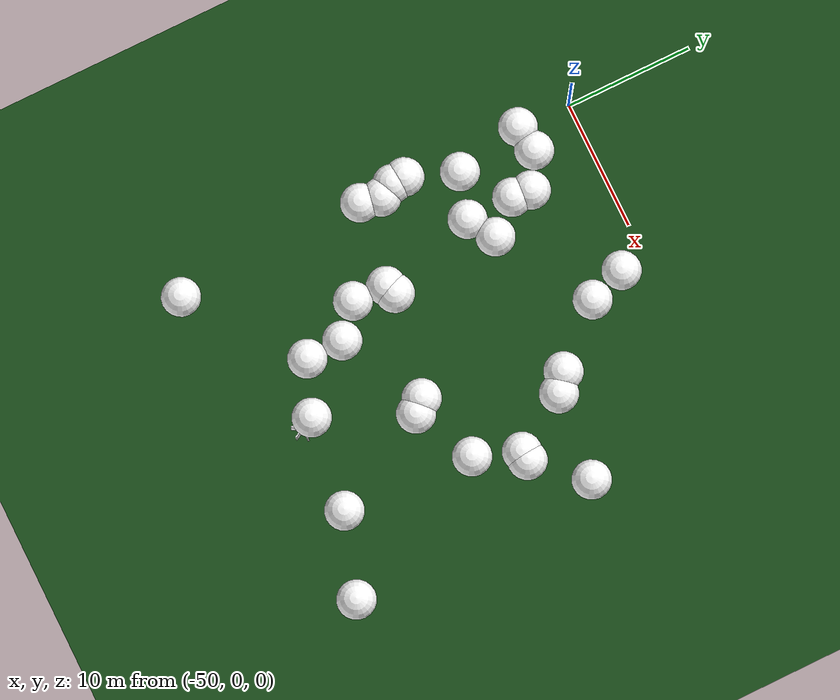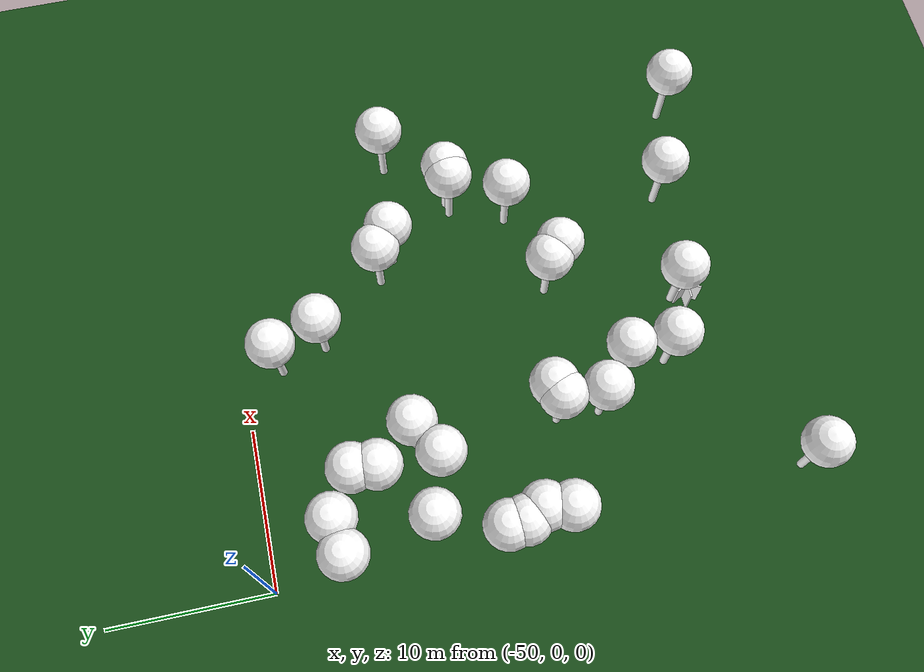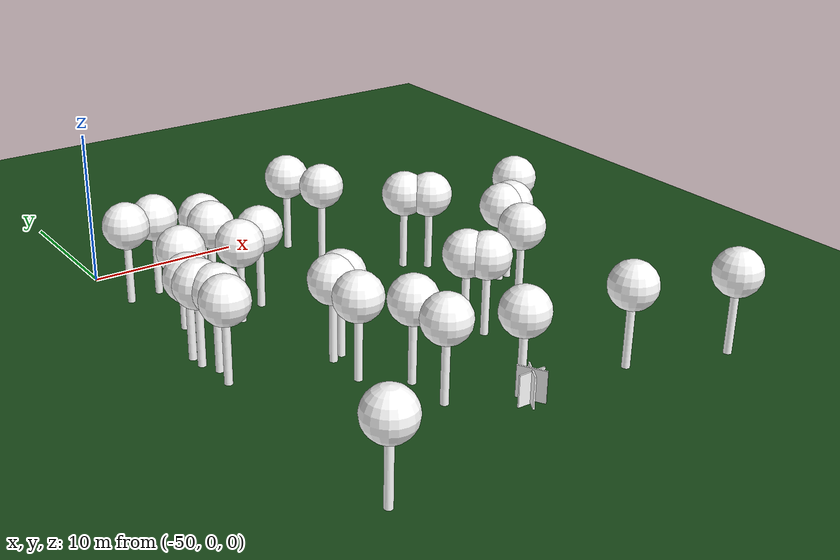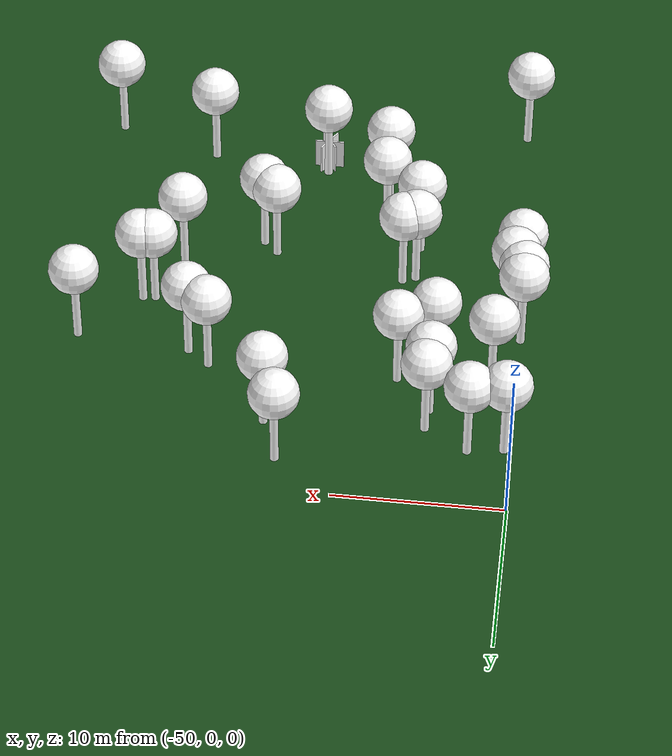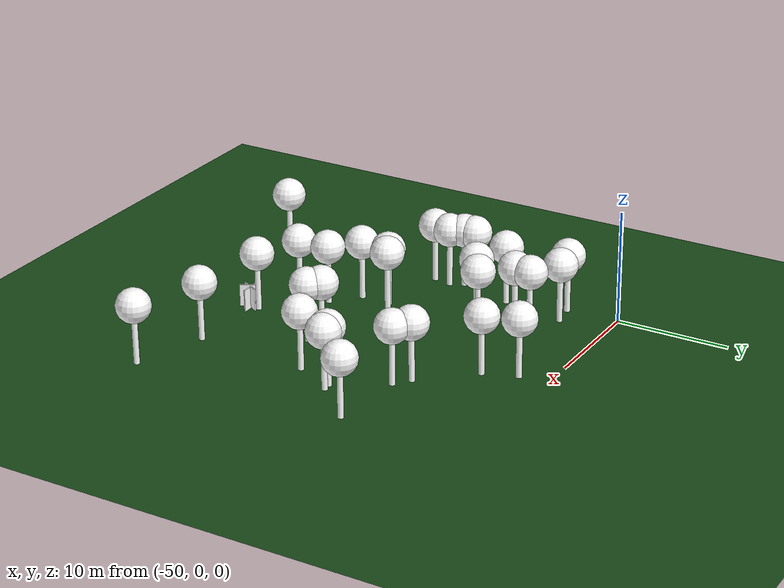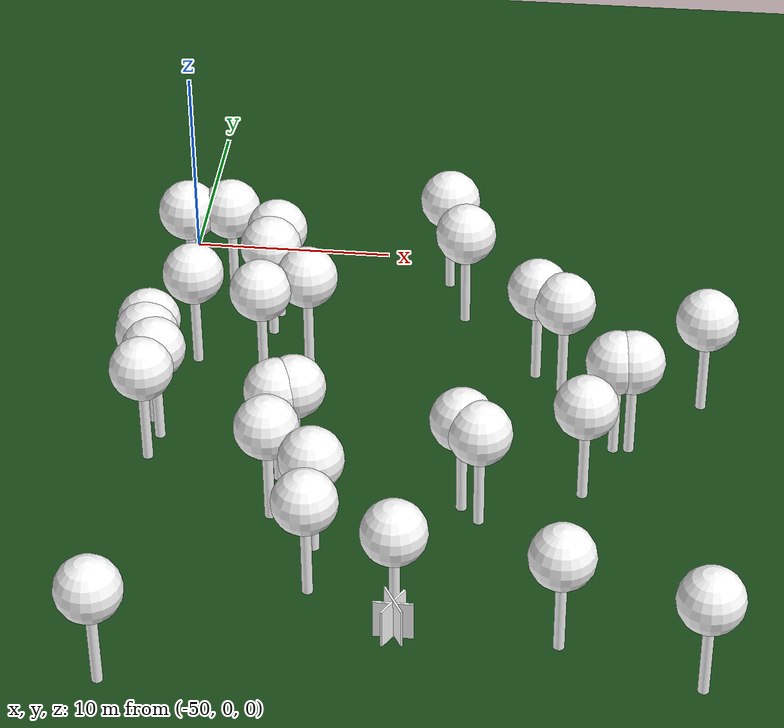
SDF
<sdf version="1.8">
 <world name="forest_world">
  <model name="fire_25">
   <pose>-36.72 -28.54 1.00 0 0 0.00</pose>
   <static>true</static>
   <link name="fire_link">
    <visual name="fire_25_fire_main_0">
     <geometry><box><size>1.80 0.10 2.00</size></box></geometry>
     <material>
      <ambient>0.7 0.35 0.0 1</ambient>
      <diffuse>1 1 1 1</diffuse>
      <specular>0 0 0 1</specular>
      <emissive>0 0 0 1</emissive>
      <pbr>
       <metal><albedo_map>textures/fire.png</albedo_map><metalness>0.0</metalness><roughness>0.6</roughness></metal>
      </pbr>
     </material>
     <transparency>0.0</transparency>
     <cast_shadows>false</cast_shadows>
    </visual>
    <visual name="fire_25_fire_60_1">
     <pose>0.00 0.00 0.10 0 0 1.05</pose>
     <geometry><box><size>1.80 0.10 2.00</size></box></geometry>
     <material>
      <ambient>0.7 0.35 0.0 1</ambient>
      <diffuse>1 1 1 1</diffuse>
      <specular>0 0 0 1</specular>
      <emissive>0 0 0 1</emissive>
      <pbr>
       <metal><albedo_map>textures/fire.png</albedo_map><metalness>0.0</metalness><roughness>0.6</roughness></metal>
      </pbr>
     </material>
     <transparency>0.0</transparency>
     <cast_shadows>false</cast_shadows>
    </visual>
    <visual name="fire_25_fire_120_2">
     <pose>0.00 0.00 0.20 0 0 2.09</pose>
     <geometry><box><size>1.80 0.10 2.00</size></box></geometry>
     <material>
      <ambient>0.7 0.35 0.0 1</ambient>
      <diffuse>1 1 1 1</diffuse>
      <specular>0 0 0 1</specular>
      <emissive>0 0 0 1</emissive>
      <pbr>
       <metal><albedo_map>textures/fire.png</albedo_map><metalness>0.0</metalness><roughness>0.6</roughness></metal>
      </pbr>
     </material>
     <transparency>0.0</transparency>
     <cast_shadows>false</cast_shadows>
    </visual>
    <light type="point" name="fire_25_light_0">
     <pose>0.40 0.00 0.50 0 0 0</pose>
     <diffuse>1.0 0.7 0.3 1</diffuse>
     <specular>1.0 0.8 0.3 1</specular>
     <intensity>2</intensity>
     <attenuation>
      <range>2</range>
      <constant>0.1</constant>
      <linear>0.05</linear>
      <quadratic>0.02</quadratic>
     </attenuation>
     <cast_shadows>false</cast_shadows>
    </light>
    <light type="point" name="fire_25_light_1">
     <pose>-0.20 0.35 0.50 0 0 0</pose>
     <diffuse>1.0 0.7 0.3 1</diffuse>
     <specular>1.0 0.8 0.3 1</specular>
     <intensity>2</intensity>
     <attenuation>
      <range>2</range>
      <constant>0.1</constant>
      <linear>0.05</linear>
      <quadratic>0.02</quadratic>
     </attenuation>
     <cast_shadows>false</cast_shadows>
    </light>
    <light type="point" name="fire_25_light_2">
     <pose>-0.20 -0.35 0.50 0 0 0</pose>
     <diffuse>1.0 0.7 0.3 1</diffuse>
     <specular>1.0 0.8 0.3 1</specular>
     <intensity>2</intensity>
     <attenuation>
      <range>2</range>
      <constant>0.1</constant>
      <linear>0.05</linear>
      <quadratic>0.02</quadratic>
     </attenuation>
     <cast_shadows>false</cast_shadows>
    </light>
   </link>
   <plugin filename="libignition-gazebo-pose-publisher-system.so" name="ignition::gazebo::systems::PosePublisher">
    <frame_id>world</frame_id>
    <publish_link_pose>true</publish_link_pose>
    <use_pose_vector_msg>true</use_pose_vector_msg>
    <static_publisher>true</static_publisher>
    <static_update_frequency>1</static_update_frequency>
   </plugin>
  </model>
  <model name="tree_simple434">
   <static>1</static>
   <link name="link">
    <pose>0 0 0.1 0 -0 0</pose>
    <collision name="collision_trunk">
     <pose>0 0 2 0 -0 0</pose>
     <geometry><cylinder><radius>0.25</radius><length>4</length></cylinder></geometry>
    </collision>
    <collision name="collision_treetop">
     <pose>0 0 5.2 0 -0 0</pose>
     <geometry><sphere><radius>1.5</radius></sphere></geometry>
    </collision>
    <visual name="trunk">
     <pose>0 0 2 0 -0 0</pose>
     <geometry><cylinder><radius>0.25</radius><length>4</length></cylinder></geometry>
     <material>
      <ambient>0.5 0.5 0.5 1</ambient>
      <diffuse>1.0 1.0 1.0 1</diffuse>
      <specular>0.0 0.0 0.0 1</specular>
      <pbr>
       <metal>
        <albedo_map>../worlds/textures/tree_simple_trunk.jpg</albedo_map>
        <metalness>0.0</metalness>
        <roughness>0.8</roughness>
       </metal>
      </pbr>
     </material>
    </visual>
    <visual name="treetop">
     <pose>0 0 5.2 0 -0 0</pose>
     <geometry><sphere><radius>1.5</radius></sphere></geometry>
     <material>
      <ambient>0.5 0.5 0.5 1</ambient>
      <diffuse>1.0 1.0 1.0 1</diffuse>
      <specular>0.0 0.0 0.0 1</specular>
      <pbr>
       <metal>
        <albedo_map>../worlds/textures/tree_simple_treetop.jpg</albedo_map>
        <metalness>0.0</metalness>
        <roughness>0.9</roughness>
       </metal>
      </pbr>
     </material>
    </visual>
   </link>
   <pose>-43.1297442783 -18.5304452852 0 0 -0 0</pose>
  </model>
  <model name="tree_simple403">
   <static>1</static>
   <link name="link">
    <pose>0 0 0.1 0 -0 0</pose>
    <collision name="collision_trunk">
     <pose>0 0 2 0 -0 0</pose>
     <geometry><cylinder><radius>0.25</radius><length>4</length></cylinder></geometry>
    </collision>
    <collision name="collision_treetop">
     <pose>0 0 5.2 0 -0 0</pose>
     <geometry><sphere><radius>1.5</radius></sphere></geometry>
    </collision>
    <visual name="trunk">
     <pose>0 0 2 0 -0 0</pose>
     <geometry><cylinder><radius>0.25</radius><length>4</length></cylinder></geometry>
     <material>
      <ambient>0.5 0.5 0.5 1</ambient>
      <diffuse>1.0 1.0 1.0 1</diffuse>
      <specular>0.0 0.0 0.0 1</specular>
      <pbr>
       <metal>
        <albedo_map>../worlds/textures/tree_simple_trunk.jpg</albedo_map>
        <metalness>0.0</metalness>
        <roughness>0.8</roughness>
       </metal>
      </pbr>
     </material>
    </visual>
    <visual name="treetop">
     <pose>0 0 5.2 0 -0 0</pose>
     <geometry><sphere><radius>1.5</radius></sphere></geometry>
     <material>
      <ambient>0.5 0.5 0.5 1</ambient>
      <diffuse>1.0 1.0 1.0 1</diffuse>
      <specular>0.0 0.0 0.0 1</specular>
      <pbr>
       <metal>
        <albedo_map>../worlds/textures/tree_simple_treetop.jpg</albedo_map>
        <metalness>0.0</metalness>
        <roughness>0.9</roughness>
       </metal>
      </pbr>
     </material>
    </visual>
   </link>
   <pose>-49.5316989744 -17.555694289 0 0 -0 0</pose>
  </model>
  <model name="tree_simple396">
   <static>1</static>
   <link name="link">
    <pose>0 0 0.1 0 -0 0</pose>
    <collision name="collision_trunk">
     <pose>0 0 2 0 -0 0</pose>
     <geometry><cylinder><radius>0.25</radius><length>4</length></cylinder></geometry>
    </collision>
    <collision name="collision_treetop">
     <pose>0 0 5.2 0 -0 0</pose>
     <geometry><sphere><radius>1.5</radius></sphere></geometry>
    </collision>
    <visual name="trunk">
     <pose>0 0 2 0 -0 0</pose>
     <geometry><cylinder><radius>0.25</radius><length>4</length></cylinder></geometry>
     <material>
      <ambient>0.5 0.5 0.5 1</ambient>
      <diffuse>1.0 1.0 1.0 1</diffuse>
      <specular>0.0 0.0 0.0 1</specular>
      <pbr>
       <metal>
        <albedo_map>../worlds/textures/tree_simple_trunk.jpg</albedo_map>
        <metalness>0.0</metalness>
        <roughness>0.8</roughness>
       </metal>
      </pbr>
     </material>
    </visual>
    <visual name="treetop">
     <pose>0 0 5.2 0 -0 0</pose>
     <geometry><sphere><radius>1.5</radius></sphere></geometry>
     <material>
      <ambient>0.5 0.5 0.5 1</ambient>
      <diffuse>1.0 1.0 1.0 1</diffuse>
      <specular>0.0 0.0 0.0 1</specular>
      <pbr>
       <metal>
        <albedo_map>../worlds/textures/tree_simple_treetop.jpg</albedo_map>
        <metalness>0.0</metalness>
        <roughness>0.9</roughness>
       </metal>
      </pbr>
     </material>
    </visual>
   </link>
   <pose>-34.4954871255 -19.8377607827 0 0 -0 0</pose>
  </model>
  <model name="tree_simple375">
   <static>1</static>
   <link name="link">
    <pose>0 0 0.1 0 -0 0</pose>
    <collision name="collision_trunk">
     <pose>0 0 2 0 -0 0</pose>
     <geometry><cylinder><radius>0.25</radius><length>4</length></cylinder></geometry>
    </collision>
    <collision name="collision_treetop">
     <pose>0 0 5.2 0 -0 0</pose>
     <geometry><sphere><radius>1.5</radius></sphere></geometry>
    </collision>
    <visual name="trunk">
     <pose>0 0 2 0 -0 0</pose>
     <geometry><cylinder><radius>0.25</radius><length>4</length></cylinder></geometry>
     <material>
      <ambient>0.5 0.5 0.5 1</ambient>
      <diffuse>1.0 1.0 1.0 1</diffuse>
      <specular>0.0 0.0 0.0 1</specular>
      <pbr>
       <metal>
        <albedo_map>../worlds/textures/tree_simple_trunk.jpg</albedo_map>
        <metalness>0.0</metalness>
        <roughness>0.8</roughness>
       </metal>
      </pbr>
     </material>
    </visual>
    <visual name="treetop">
     <pose>0 0 5.2 0 -0 0</pose>
     <geometry><sphere><radius>1.5</radius></sphere></geometry>
     <material>
      <ambient>0.5 0.5 0.5 1</ambient>
      <diffuse>1.0 1.0 1.0 1</diffuse>
      <specular>0.0 0.0 0.0 1</specular>
      <pbr>
       <metal>
        <albedo_map>../worlds/textures/tree_simple_treetop.jpg</albedo_map>
        <metalness>0.0</metalness>
        <roughness>0.9</roughness>
       </metal>
      </pbr>
     </material>
    </visual>
   </link>
   <pose>-48.3845088934 -9.9079742 0 0 -0 0</pose>
  </model>
  <model name="tree_simple373">
   <static>1</static>
   <link name="link">
    <pose>0 0 0.1 0 -0 0</pose>
    <collision name="collision_trunk">
     <pose>0 0 2 0 -0 0</pose>
     <geometry><cylinder><radius>0.25</radius><length>4</length></cylinder></geometry>
    </collision>
    <collision name="collision_treetop">
     <pose>0 0 5.2 0 -0 0</pose>
     <geometry><sphere><radius>1.5</radius></sphere></geometry>
    </collision>
    <visual name="trunk">
     <pose>0 0 2 0 -0 0</pose>
     <geometry><cylinder><radius>0.25</radius><length>4</length></cylinder></geometry>
     <material>
      <ambient>0.5 0.5 0.5 1</ambient>
      <diffuse>1.0 1.0 1.0 1</diffuse>
      <specular>0.0 0.0 0.0 1</specular>
      <pbr>
       <metal>
        <albedo_map>../worlds/textures/tree_simple_trunk.jpg</albedo_map>
        <metalness>0.0</metalness>
        <roughness>0.8</roughness>
       </metal>
      </pbr>
     </material>
    </visual>
    <visual name="treetop">
     <pose>0 0 5.2 0 -0 0</pose>
     <geometry><sphere><radius>1.5</radius></sphere></geometry>
     <material>
      <ambient>0.5 0.5 0.5 1</ambient>
      <diffuse>1.0 1.0 1.0 1</diffuse>
      <specular>0.0 0.0 0.0 1</specular>
      <pbr>
       <metal>
        <albedo_map>../worlds/textures/tree_simple_treetop.jpg</albedo_map>
        <metalness>0.0</metalness>
        <roughness>0.9</roughness>
       </metal>
      </pbr>
     </material>
    </visual>
   </link>
   <pose>-43.1842610619 -21.2191114712 0 0 -0 0</pose>
  </model>
  <model name="tree_simple370">
   <static>1</static>
   <link name="link">
    <pose>0 0 0.1 0 -0 0</pose>
    <collision name="collision_trunk">
     <pose>0 0 2 0 -0 0</pose>
     <geometry><cylinder><radius>0.25</radius><length>4</length></cylinder></geometry>
    </collision>
    <collision name="collision_treetop">
     <pose>0 0 5.2 0 -0 0</pose>
     <geometry><sphere><radius>1.5</radius></sphere></geometry>
    </collision>
    <visual name="trunk">
     <pose>0 0 2 0 -0 0</pose>
     <geometry><cylinder><radius>0.25</radius><length>4</length></cylinder></geometry>
     <material>
      <ambient>0.5 0.5 0.5 1</ambient>
      <diffuse>1.0 1.0 1.0 1</diffuse>
      <specular>0.0 0.0 0.0 1</specular>
      <pbr>
       <metal>
        <albedo_map>../worlds/textures/tree_simple_trunk.jpg</albedo_map>
        <metalness>0.0</metalness>
        <roughness>0.8</roughness>
       </metal>
      </pbr>
     </material>
    </visual>
    <visual name="treetop">
     <pose>0 0 5.2 0 -0 0</pose>
     <geometry><sphere><radius>1.5</radius></sphere></geometry>
     <material>
      <ambient>0.5 0.5 0.5 1</ambient>
      <diffuse>1.0 1.0 1.0 1</diffuse>
      <specular>0.0 0.0 0.0 1</specular>
      <pbr>
       <metal>
        <albedo_map>../worlds/textures/tree_simple_treetop.jpg</albedo_map>
        <metalness>0.0</metalness>
        <roughness>0.9</roughness>
       </metal>
      </pbr>
     </material>
    </visual>
   </link>
   <pose>-36.749040883 -27.7198172667 0 0 -0 0</pose>
  </model>
  <model name="tree_simple369">
   <static>1</static>
   <link name="link">
    <pose>0 0 0.1 0 -0 0</pose>
    <collision name="collision_trunk">
     <pose>0 0 2 0 -0 0</pose>
     <geometry><cylinder><radius>0.25</radius><length>4</length></cylinder></geometry>
    </collision>
    <collision name="collision_treetop">
     <pose>0 0 5.2 0 -0 0</pose>
     <geometry><sphere><radius>1.5</radius></sphere></geometry>
    </collision>
    <visual name="trunk">
     <pose>0 0 2 0 -0 0</pose>
     <geometry><cylinder><radius>0.25</radius><length>4</length></cylinder></geometry>
     <material>
      <ambient>0.5 0.5 0.5 1</ambient>
      <diffuse>1.0 1.0 1.0 1</diffuse>
      <specular>0.0 0.0 0.0 1</specular>
      <pbr>
       <metal>
        <albedo_map>../worlds/textures/tree_simple_trunk.jpg</albedo_map>
        <metalness>0.0</metalness>
        <roughness>0.8</roughness>
       </metal>
      </pbr>
     </material>
    </visual>
    <visual name="treetop">
     <pose>0 0 5.2 0 -0 0</pose>
     <geometry><sphere><radius>1.5</radius></sphere></geometry>
     <material>
      <ambient>0.5 0.5 0.5 1</ambient>
      <diffuse>1.0 1.0 1.0 1</diffuse>
      <specular>0.0 0.0 0.0 1</specular>
      <pbr>
       <metal>
        <albedo_map>../worlds/textures/tree_simple_treetop.jpg</albedo_map>
        <metalness>0.0</metalness>
        <roughness>0.9</roughness>
       </metal>
      </pbr>
     </material>
    </visual>
   </link>
   <pose>-40.8904214301 -23.21757156 0 0 -0 0</pose>
  </model>
  <model name="tree_simple341">
   <static>1</static>
   <link name="link">
    <pose>0 0 0.1 0 -0 0</pose>
    <collision name="collision_trunk">
     <pose>0 0 2 0 -0 0</pose>
     <geometry><cylinder><radius>0.25</radius><length>4</length></cylinder></geometry>
    </collision>
    <collision name="collision_treetop">
     <pose>0 0 5.2 0 -0 0</pose>
     <geometry><sphere><radius>1.5</radius></sphere></geometry>
    </collision>
    <visual name="trunk">
     <pose>0 0 2 0 -0 0</pose>
     <geometry><cylinder><radius>0.25</radius><length>4</length></cylinder></geometry>
     <material>
      <ambient>0.5 0.5 0.5 1</ambient>
      <diffuse>1.0 1.0 1.0 1</diffuse>
      <specular>0.0 0.0 0.0 1</specular>
      <pbr>
       <metal>
        <albedo_map>../worlds/textures/tree_simple_trunk.jpg</albedo_map>
        <metalness>0.0</metalness>
        <roughness>0.8</roughness>
       </metal>
      </pbr>
     </material>
    </visual>
    <visual name="treetop">
     <pose>0 0 5.2 0 -0 0</pose>
     <geometry><sphere><radius>1.5</radius></sphere></geometry>
     <material>
      <ambient>0.5 0.5 0.5 1</ambient>
      <diffuse>1.0 1.0 1.0 1</diffuse>
      <specular>0.0 0.0 0.0 1</specular>
      <pbr>
       <metal>
        <albedo_map>../worlds/textures/tree_simple_treetop.jpg</albedo_map>
        <metalness>0.0</metalness>
        <roughness>0.9</roughness>
       </metal>
      </pbr>
     </material>
    </visual>
   </link>
   <pose>-49.5073976614 -4.58498276765 0 0 -0 0</pose>
  </model>
  <model name="tree_simple326">
   <static>1</static>
   <link name="link">
    <pose>0 0 0.1 0 -0 0</pose>
    <collision name="collision_trunk">
     <pose>0 0 2 0 -0 0</pose>
     <geometry><cylinder><radius>0.25</radius><length>4</length></cylinder></geometry>
    </collision>
    <collision name="collision_treetop">
     <pose>0 0 5.2 0 -0 0</pose>
     <geometry><sphere><radius>1.5</radius></sphere></geometry>
    </collision>
    <visual name="trunk">
     <pose>0 0 2 0 -0 0</pose>
     <geometry><cylinder><radius>0.25</radius><length>4</length></cylinder></geometry>
     <material>
      <ambient>0.5 0.5 0.5 1</ambient>
      <diffuse>1.0 1.0 1.0 1</diffuse>
      <specular>0.0 0.0 0.0 1</specular>
      <pbr>
       <metal>
        <albedo_map>../worlds/textures/tree_simple_trunk.jpg</albedo_map>
        <metalness>0.0</metalness>
        <roughness>0.8</roughness>
       </metal>
      </pbr>
     </material>
    </visual>
    <visual name="treetop">
     <pose>0 0 5.2 0 -0 0</pose>
     <geometry><sphere><radius>1.5</radius></sphere></geometry>
     <material>
      <ambient>0.5 0.5 0.5 1</ambient>
      <diffuse>1.0 1.0 1.0 1</diffuse>
      <specular>0.0 0.0 0.0 1</specular>
      <pbr>
       <metal>
        <albedo_map>../worlds/textures/tree_simple_treetop.jpg</albedo_map>
        <metalness>0.0</metalness>
        <roughness>0.9</roughness>
       </metal>
      </pbr>
     </material>
    </visual>
   </link>
   <pose>-44.8519520945 -5.80439962373 0 0 -0 0</pose>
  </model>
  <model name="tree_simple323">
   <static>1</static>
   <link name="link">
    <pose>0 0 0.1 0 -0 0</pose>
    <collision name="collision_trunk">
     <pose>0 0 2 0 -0 0</pose>
     <geometry><cylinder><radius>0.25</radius><length>4</length></cylinder></geometry>
    </collision>
    <collision name="collision_treetop">
     <pose>0 0 5.2 0 -0 0</pose>
     <geometry><sphere><radius>1.5</radius></sphere></geometry>
    </collision>
    <visual name="trunk">
     <pose>0 0 2 0 -0 0</pose>
     <geometry><cylinder><radius>0.25</radius><length>4</length></cylinder></geometry>
     <material>
      <ambient>0.5 0.5 0.5 1</ambient>
      <diffuse>1.0 1.0 1.0 1</diffuse>
      <specular>0.0 0.0 0.0 1</specular>
      <pbr>
       <metal>
        <albedo_map>../worlds/textures/tree_simple_trunk.jpg</albedo_map>
        <metalness>0.0</metalness>
        <roughness>0.8</roughness>
       </metal>
      </pbr>
     </material>
    </visual>
    <visual name="treetop">
     <pose>0 0 5.2 0 -0 0</pose>
     <geometry><sphere><radius>1.5</radius></sphere></geometry>
     <material>
      <ambient>0.5 0.5 0.5 1</ambient>
      <diffuse>1.0 1.0 1.0 1</diffuse>
      <specular>0.0 0.0 0.0 1</specular>
      <pbr>
       <metal>
        <albedo_map>../worlds/textures/tree_simple_treetop.jpg</albedo_map>
        <metalness>0.0</metalness>
        <roughness>0.9</roughness>
       </metal>
      </pbr>
     </material>
    </visual>
   </link>
   <pose>-44.9542016132 -10.9647646888 0 0 -0 0</pose>
  </model>
  <model name="tree_simple318">
   <static>1</static>
   <link name="link">
    <pose>0 0 0.1 0 -0 0</pose>
    <collision name="collision_trunk">
     <pose>0 0 2 0 -0 0</pose>
     <geometry><cylinder><radius>0.25</radius><length>4</length></cylinder></geometry>
    </collision>
    <collision name="collision_treetop">
     <pose>0 0 5.2 0 -0 0</pose>
     <geometry><sphere><radius>1.5</radius></sphere></geometry>
    </collision>
    <visual name="trunk">
     <pose>0 0 2 0 -0 0</pose>
     <geometry><cylinder><radius>0.25</radius><length>4</length></cylinder></geometry>
     <material>
      <ambient>0.5 0.5 0.5 1</ambient>
      <diffuse>1.0 1.0 1.0 1</diffuse>
      <specular>0.0 0.0 0.0 1</specular>
      <pbr>
       <metal>
        <albedo_map>../worlds/textures/tree_simple_trunk.jpg</albedo_map>
        <metalness>0.0</metalness>
        <roughness>0.8</roughness>
       </metal>
      </pbr>
     </material>
    </visual>
    <visual name="treetop">
     <pose>0 0 5.2 0 -0 0</pose>
     <geometry><sphere><radius>1.5</radius></sphere></geometry>
     <material>
      <ambient>0.5 0.5 0.5 1</ambient>
      <diffuse>1.0 1.0 1.0 1</diffuse>
      <specular>0.0 0.0 0.0 1</specular>
      <pbr>
       <metal>
        <albedo_map>../worlds/textures/tree_simple_treetop.jpg</albedo_map>
        <metalness>0.0</metalness>
        <roughness>0.9</roughness>
       </metal>
      </pbr>
     </material>
    </visual>
   </link>
   <pose>-35.5307244579 -5.31130875944 0 0 -0 0</pose>
  </model>
  <model name="tree_simple312">
   <static>1</static>
   <link name="link">
    <pose>0 0 0.1 0 -0 0</pose>
    <collision name="collision_trunk">
     <pose>0 0 2 0 -0 0</pose>
     <geometry><cylinder><radius>0.25</radius><length>4</length></cylinder></geometry>
    </collision>
    <collision name="collision_treetop">
     <pose>0 0 5.2 0 -0 0</pose>
     <geometry><sphere><radius>1.5</radius></sphere></geometry>
    </collision>
    <visual name="trunk">
     <pose>0 0 2 0 -0 0</pose>
     <geometry><cylinder><radius>0.25</radius><length>4</length></cylinder></geometry>
     <material>
      <ambient>0.5 0.5 0.5 1</ambient>
      <diffuse>1.0 1.0 1.0 1</diffuse>
      <specular>0.0 0.0 0.0 1</specular>
      <pbr>
       <metal>
        <albedo_map>../worlds/textures/tree_simple_trunk.jpg</albedo_map>
        <metalness>0.0</metalness>
        <roughness>0.8</roughness>
       </metal>
      </pbr>
     </material>
    </visual>
    <visual name="treetop">
     <pose>0 0 5.2 0 -0 0</pose>
     <geometry><sphere><radius>1.5</radius></sphere></geometry>
     <material>
      <ambient>0.5 0.5 0.5 1</ambient>
      <diffuse>1.0 1.0 1.0 1</diffuse>
      <specular>0.0 0.0 0.0 1</specular>
      <pbr>
       <metal>
        <albedo_map>../worlds/textures/tree_simple_treetop.jpg</albedo_map>
        <metalness>0.0</metalness>
        <roughness>0.9</roughness>
       </metal>
      </pbr>
     </material>
    </visual>
   </link>
   <pose>-49.0127914394 -32.4704975261 0 0 -0 0</pose>
  </model>
  <model name="tree_simple276">
   <static>1</static>
   <link name="link">
    <pose>0 0 0.1 0 -0 0</pose>
    <collision name="collision_trunk">
     <pose>0 0 2 0 -0 0</pose>
     <geometry><cylinder><radius>0.25</radius><length>4</length></cylinder></geometry>
    </collision>
    <collision name="collision_treetop">
     <pose>0 0 5.2 0 -0 0</pose>
     <geometry><sphere><radius>1.5</radius></sphere></geometry>
    </collision>
    <visual name="trunk">
     <pose>0 0 2 0 -0 0</pose>
     <geometry><cylinder><radius>0.25</radius><length>4</length></cylinder></geometry>
     <material>
      <ambient>0.5 0.5 0.5 1</ambient>
      <diffuse>1.0 1.0 1.0 1</diffuse>
      <specular>0.0 0.0 0.0 1</specular>
      <pbr>
       <metal>
        <albedo_map>../worlds/textures/tree_simple_trunk.jpg</albedo_map>
        <metalness>0.0</metalness>
        <roughness>0.8</roughness>
       </metal>
      </pbr>
     </material>
    </visual>
    <visual name="treetop">
     <pose>0 0 5.2 0 -0 0</pose>
     <geometry><sphere><radius>1.5</radius></sphere></geometry>
     <material>
      <ambient>0.5 0.5 0.5 1</ambient>
      <diffuse>1.0 1.0 1.0 1</diffuse>
      <specular>0.0 0.0 0.0 1</specular>
      <pbr>
       <metal>
        <albedo_map>../worlds/textures/tree_simple_treetop.jpg</albedo_map>
        <metalness>0.0</metalness>
        <roughness>0.9</roughness>
       </metal>
      </pbr>
     </material>
    </visual>
   </link>
   <pose>-29.5152065305 -28.5569261037 0 0 -0 0</pose>
  </model>
  <model name="tree_simple272">
   <static>1</static>
   <link name="link">
    <pose>0 0 0.1 0 -0 0</pose>
    <collision name="collision_trunk">
     <pose>0 0 2 0 -0 0</pose>
     <geometry><cylinder><radius>0.25</radius><length>4</length></cylinder></geometry>
    </collision>
    <collision name="collision_treetop">
     <pose>0 0 5.2 0 -0 0</pose>
     <geometry><sphere><radius>1.5</radius></sphere></geometry>
    </collision>
    <visual name="trunk">
     <pose>0 0 2 0 -0 0</pose>
     <geometry><cylinder><radius>0.25</radius><length>4</length></cylinder></geometry>
     <material>
      <ambient>0.5 0.5 0.5 1</ambient>
      <diffuse>1.0 1.0 1.0 1</diffuse>
      <specular>0.0 0.0 0.0 1</specular>
      <pbr>
       <metal>
        <albedo_map>../worlds/textures/tree_simple_trunk.jpg</albedo_map>
        <metalness>0.0</metalness>
        <roughness>0.8</roughness>
       </metal>
      </pbr>
     </material>
    </visual>
    <visual name="treetop">
     <pose>0 0 5.2 0 -0 0</pose>
     <geometry><sphere><radius>1.5</radius></sphere></geometry>
     <material>
      <ambient>0.5 0.5 0.5 1</ambient>
      <diffuse>1.0 1.0 1.0 1</diffuse>
      <specular>0.0 0.0 0.0 1</specular>
      <pbr>
       <metal>
        <albedo_map>../worlds/textures/tree_simple_treetop.jpg</albedo_map>
        <metalness>0.0</metalness>
        <roughness>0.9</roughness>
       </metal>
      </pbr>
     </material>
    </visual>
   </link>
   <pose>-28.9961141051 -18.3973115949 0 0 -0 0</pose>
  </model>
  <model name="tree_simple262">
   <static>1</static>
   <link name="link">
    <pose>0 0 0.1 0 -0 0</pose>
    <collision name="collision_trunk">
     <pose>0 0 2 0 -0 0</pose>
     <geometry><cylinder><radius>0.25</radius><length>4</length></cylinder></geometry>
    </collision>
    <collision name="collision_treetop">
     <pose>0 0 5.2 0 -0 0</pose>
     <geometry><sphere><radius>1.5</radius></sphere></geometry>
    </collision>
    <visual name="trunk">
     <pose>0 0 2 0 -0 0</pose>
     <geometry><cylinder><radius>0.25</radius><length>4</length></cylinder></geometry>
     <material>
      <ambient>0.5 0.5 0.5 1</ambient>
      <diffuse>1.0 1.0 1.0 1</diffuse>
      <specular>0.0 0.0 0.0 1</specular>
      <pbr>
       <metal>
        <albedo_map>../worlds/textures/tree_simple_trunk.jpg</albedo_map>
        <metalness>0.0</metalness>
        <roughness>0.8</roughness>
       </metal>
      </pbr>
     </material>
    </visual>
    <visual name="treetop">
     <pose>0 0 5.2 0 -0 0</pose>
     <geometry><sphere><radius>1.5</radius></sphere></geometry>
     <material>
      <ambient>0.5 0.5 0.5 1</ambient>
      <diffuse>1.0 1.0 1.0 1</diffuse>
      <specular>0.0 0.0 0.0 1</specular>
      <pbr>
       <metal>
        <albedo_map>../worlds/textures/tree_simple_treetop.jpg</albedo_map>
        <metalness>0.0</metalness>
        <roughness>0.9</roughness>
       </metal>
      </pbr>
     </material>
    </visual>
   </link>
   <pose>-23.2560890967 -30.6191265847 0 0 -0 0</pose>
  </model>
  <model name="tree_simple259">
   <static>1</static>
   <link name="link">
    <pose>0 0 0.1 0 -0 0</pose>
    <collision name="collision_trunk">
     <pose>0 0 2 0 -0 0</pose>
     <geometry><cylinder><radius>0.25</radius><length>4</length></cylinder></geometry>
    </collision>
    <collision name="collision_treetop">
     <pose>0 0 5.2 0 -0 0</pose>
     <geometry><sphere><radius>1.5</radius></sphere></geometry>
    </collision>
    <visual name="trunk">
     <pose>0 0 2 0 -0 0</pose>
     <geometry><cylinder><radius>0.25</radius><length>4</length></cylinder></geometry>
     <material>
      <ambient>0.5 0.5 0.5 1</ambient>
      <diffuse>1.0 1.0 1.0 1</diffuse>
      <specular>0.0 0.0 0.0 1</specular>
      <pbr>
       <metal>
        <albedo_map>../worlds/textures/tree_simple_trunk.jpg</albedo_map>
        <metalness>0.0</metalness>
        <roughness>0.8</roughness>
       </metal>
      </pbr>
     </material>
    </visual>
    <visual name="treetop">
     <pose>0 0 5.2 0 -0 0</pose>
     <geometry><sphere><radius>1.5</radius></sphere></geometry>
     <material>
      <ambient>0.5 0.5 0.5 1</ambient>
      <diffuse>1.0 1.0 1.0 1</diffuse>
      <specular>0.0 0.0 0.0 1</specular>
      <pbr>
       <metal>
        <albedo_map>../worlds/textures/tree_simple_treetop.jpg</albedo_map>
        <metalness>0.0</metalness>
        <roughness>0.9</roughness>
       </metal>
      </pbr>
     </material>
    </visual>
   </link>
   <pose>-49.2281564384 -15.9494105315 0 0 -0 0</pose>
  </model>
  <model name="tree_simple240">
   <static>1</static>
   <link name="link">
    <pose>0 0 0.1 0 -0 0</pose>
    <collision name="collision_trunk">
     <pose>0 0 2 0 -0 0</pose>
     <geometry><cylinder><radius>0.25</radius><length>4</length></cylinder></geometry>
    </collision>
    <collision name="collision_treetop">
     <pose>0 0 5.2 0 -0 0</pose>
     <geometry><sphere><radius>1.5</radius></sphere></geometry>
    </collision>
    <visual name="trunk">
     <pose>0 0 2 0 -0 0</pose>
     <geometry><cylinder><radius>0.25</radius><length>4</length></cylinder></geometry>
     <material>
      <ambient>0.5 0.5 0.5 1</ambient>
      <diffuse>1.0 1.0 1.0 1</diffuse>
      <specular>0.0 0.0 0.0 1</specular>
      <pbr>
       <metal>
        <albedo_map>../worlds/textures/tree_simple_trunk.jpg</albedo_map>
        <metalness>0.0</metalness>
        <roughness>0.8</roughness>
       </metal>
      </pbr>
     </material>
    </visual>
    <visual name="treetop">
     <pose>0 0 5.2 0 -0 0</pose>
     <geometry><sphere><radius>1.5</radius></sphere></geometry>
     <material>
      <ambient>0.5 0.5 0.5 1</ambient>
      <diffuse>1.0 1.0 1.0 1</diffuse>
      <specular>0.0 0.0 0.0 1</specular>
      <pbr>
       <metal>
        <albedo_map>../worlds/textures/tree_simple_treetop.jpg</albedo_map>
        <metalness>0.0</metalness>
        <roughness>0.9</roughness>
       </metal>
      </pbr>
     </material>
    </visual>
   </link>
   <pose>-49.7673729573 -14.7908164176 0 0 -0 0</pose>
  </model>
  <model name="tree_simple239">
   <static>1</static>
   <link name="link">
    <pose>0 0 0.1 0 -0 0</pose>
    <collision name="collision_trunk">
     <pose>0 0 2 0 -0 0</pose>
     <geometry><cylinder><radius>0.25</radius><length>4</length></cylinder></geometry>
    </collision>
    <collision name="collision_treetop">
     <pose>0 0 5.2 0 -0 0</pose>
     <geometry><sphere><radius>1.5</radius></sphere></geometry>
    </collision>
    <visual name="trunk">
     <pose>0 0 2 0 -0 0</pose>
     <geometry><cylinder><radius>0.25</radius><length>4</length></cylinder></geometry>
     <material>
      <ambient>0.5 0.5 0.5 1</ambient>
      <diffuse>1.0 1.0 1.0 1</diffuse>
      <specular>0.0 0.0 0.0 1</specular>
      <pbr>
       <metal>
        <albedo_map>../worlds/textures/tree_simple_trunk.jpg</albedo_map>
        <metalness>0.0</metalness>
        <roughness>0.8</roughness>
       </metal>
      </pbr>
     </material>
    </visual>
    <visual name="treetop">
     <pose>0 0 5.2 0 -0 0</pose>
     <geometry><sphere><radius>1.5</radius></sphere></geometry>
     <material>
      <ambient>0.5 0.5 0.5 1</ambient>
      <diffuse>1.0 1.0 1.0 1</diffuse>
      <specular>0.0 0.0 0.0 1</specular>
      <pbr>
       <metal>
        <albedo_map>../worlds/textures/tree_simple_treetop.jpg</albedo_map>
        <metalness>0.0</metalness>
        <roughness>0.9</roughness>
       </metal>
      </pbr>
     </material>
    </visual>
   </link>
   <pose>-44.9803872855 -7.28495240751 0 0 -0 0</pose>
  </model>
  <model name="tree_simple221">
   <static>1</static>
   <link name="link">
    <pose>0 0 0.1 0 -0 0</pose>
    <collision name="collision_trunk">
     <pose>0 0 2 0 -0 0</pose>
     <geometry><cylinder><radius>0.25</radius><length>4</length></cylinder></geometry>
    </collision>
    <collision name="collision_treetop">
     <pose>0 0 5.2 0 -0 0</pose>
     <geometry><sphere><radius>1.5</radius></sphere></geometry>
    </collision>
    <visual name="trunk">
     <pose>0 0 2 0 -0 0</pose>
     <geometry><cylinder><radius>0.25</radius><length>4</length></cylinder></geometry>
     <material>
      <ambient>0.5 0.5 0.5 1</ambient>
      <diffuse>1.0 1.0 1.0 1</diffuse>
      <specular>0.0 0.0 0.0 1</specular>
      <pbr>
       <metal>
        <albedo_map>../worlds/textures/tree_simple_trunk.jpg</albedo_map>
        <metalness>0.0</metalness>
        <roughness>0.8</roughness>
       </metal>
      </pbr>
     </material>
    </visual>
    <visual name="treetop">
     <pose>0 0 5.2 0 -0 0</pose>
     <geometry><sphere><radius>1.5</radius></sphere></geometry>
     <material>
      <ambient>0.5 0.5 0.5 1</ambient>
      <diffuse>1.0 1.0 1.0 1</diffuse>
      <specular>0.0 0.0 0.0 1</specular>
      <pbr>
       <metal>
        <albedo_map>../worlds/textures/tree_simple_treetop.jpg</albedo_map>
        <metalness>0.0</metalness>
        <roughness>0.9</roughness>
       </metal>
      </pbr>
     </material>
    </visual>
   </link>
   <pose>-33.630014063 -20.7003393039 0 0 -0 0</pose>
  </model>
  <model name="tree_simple220">
   <static>1</static>
   <link name="link">
    <pose>0 0 0.1 0 -0 0</pose>
    <collision name="collision_trunk">
     <pose>0 0 2 0 -0 0</pose>
     <geometry><cylinder><radius>0.25</radius><length>4</length></cylinder></geometry>
    </collision>
    <collision name="collision_treetop">
     <pose>0 0 5.2 0 -0 0</pose>
     <geometry><sphere><radius>1.5</radius></sphere></geometry>
    </collision>
    <visual name="trunk">
     <pose>0 0 2 0 -0 0</pose>
     <geometry><cylinder><radius>0.25</radius><length>4</length></cylinder></geometry>
     <material>
      <ambient>0.5 0.5 0.5 1</ambient>
      <diffuse>1.0 1.0 1.0 1</diffuse>
      <specular>0.0 0.0 0.0 1</specular>
      <pbr>
       <metal>
        <albedo_map>../worlds/textures/tree_simple_trunk.jpg</albedo_map>
        <metalness>0.0</metalness>
        <roughness>0.8</roughness>
       </metal>
      </pbr>
     </material>
    </visual>
    <visual name="treetop">
     <pose>0 0 5.2 0 -0 0</pose>
     <geometry><sphere><radius>1.5</radius></sphere></geometry>
     <material>
      <ambient>0.5 0.5 0.5 1</ambient>
      <diffuse>1.0 1.0 1.0 1</diffuse>
      <specular>0.0 0.0 0.0 1</specular>
      <pbr>
       <metal>
        <albedo_map>../worlds/textures/tree_simple_treetop.jpg</albedo_map>
        <metalness>0.0</metalness>
        <roughness>0.9</roughness>
       </metal>
      </pbr>
     </material>
    </visual>
   </link>
   <pose>-36.5535815793 -2.43279627312 0 0 -0 0</pose>
  </model>
  <model name="tree_simple212">
   <static>1</static>
   <link name="link">
    <pose>0 0 0.1 0 -0 0</pose>
    <collision name="collision_trunk">
     <pose>0 0 2 0 -0 0</pose>
     <geometry><cylinder><radius>0.25</radius><length>4</length></cylinder></geometry>
    </collision>
    <collision name="collision_treetop">
     <pose>0 0 5.2 0 -0 0</pose>
     <geometry><sphere><radius>1.5</radius></sphere></geometry>
    </collision>
    <visual name="trunk">
     <pose>0 0 2 0 -0 0</pose>
     <geometry><cylinder><radius>0.25</radius><length>4</length></cylinder></geometry>
     <material>
      <ambient>0.5 0.5 0.5 1</ambient>
      <diffuse>1.0 1.0 1.0 1</diffuse>
      <specular>0.0 0.0 0.0 1</specular>
      <pbr>
       <metal>
        <albedo_map>../worlds/textures/tree_simple_trunk.jpg</albedo_map>
        <metalness>0.0</metalness>
        <roughness>0.8</roughness>
       </metal>
      </pbr>
     </material>
    </visual>
    <visual name="treetop">
     <pose>0 0 5.2 0 -0 0</pose>
     <geometry><sphere><radius>1.5</radius></sphere></geometry>
     <material>
      <ambient>0.5 0.5 0.5 1</ambient>
      <diffuse>1.0 1.0 1.0 1</diffuse>
      <specular>0.0 0.0 0.0 1</specular>
      <pbr>
       <metal>
        <albedo_map>../worlds/textures/tree_simple_treetop.jpg</albedo_map>
        <metalness>0.0</metalness>
        <roughness>0.9</roughness>
       </metal>
      </pbr>
     </material>
    </visual>
   </link>
   <pose>-40.8079801591 -26.1075975904 0 0 -0 0</pose>
  </model>
  <model name="tree_simple194">
   <static>1</static>
   <link name="link">
    <pose>0 0 0.1 0 -0 0</pose>
    <collision name="collision_trunk">
     <pose>0 0 2 0 -0 0</pose>
     <geometry><cylinder><radius>0.25</radius><length>4</length></cylinder></geometry>
    </collision>
    <collision name="collision_treetop">
     <pose>0 0 5.2 0 -0 0</pose>
     <geometry><sphere><radius>1.5</radius></sphere></geometry>
    </collision>
    <visual name="trunk">
     <pose>0 0 2 0 -0 0</pose>
     <geometry><cylinder><radius>0.25</radius><length>4</length></cylinder></geometry>
     <material>
      <ambient>0.5 0.5 0.5 1</ambient>
      <diffuse>1.0 1.0 1.0 1</diffuse>
      <specular>0.0 0.0 0.0 1</specular>
      <pbr>
       <metal>
        <albedo_map>../worlds/textures/tree_simple_trunk.jpg</albedo_map>
        <metalness>0.0</metalness>
        <roughness>0.8</roughness>
       </metal>
      </pbr>
     </material>
    </visual>
    <visual name="treetop">
     <pose>0 0 5.2 0 -0 0</pose>
     <geometry><sphere><radius>1.5</radius></sphere></geometry>
     <material>
      <ambient>0.5 0.5 0.5 1</ambient>
      <diffuse>1.0 1.0 1.0 1</diffuse>
      <specular>0.0 0.0 0.0 1</specular>
      <pbr>
       <metal>
        <albedo_map>../worlds/textures/tree_simple_treetop.jpg</albedo_map>
        <metalness>0.0</metalness>
        <roughness>0.9</roughness>
       </metal>
      </pbr>
     </material>
    </visual>
   </link>
   <pose>-23.6189562951 -11.2622665902 0 0 -0 0</pose>
  </model>
  <model name="tree_simple171">
   <static>1</static>
   <link name="link">
    <pose>0 0 0.1 0 -0 0</pose>
    <collision name="collision_trunk">
     <pose>0 0 2 0 -0 0</pose>
     <geometry><cylinder><radius>0.25</radius><length>4</length></cylinder></geometry>
    </collision>
    <collision name="collision_treetop">
     <pose>0 0 5.2 0 -0 0</pose>
     <geometry><sphere><radius>1.5</radius></sphere></geometry>
    </collision>
    <visual name="trunk">
     <pose>0 0 2 0 -0 0</pose>
     <geometry><cylinder><radius>0.25</radius><length>4</length></cylinder></geometry>
     <material>
      <ambient>0.5 0.5 0.5 1</ambient>
      <diffuse>1.0 1.0 1.0 1</diffuse>
      <specular>0.0 0.0 0.0 1</specular>
      <pbr>
       <metal>
        <albedo_map>../worlds/textures/tree_simple_trunk.jpg</albedo_map>
        <metalness>0.0</metalness>
        <roughness>0.8</roughness>
       </metal>
      </pbr>
     </material>
    </visual>
    <visual name="treetop">
     <pose>0 0 5.2 0 -0 0</pose>
     <geometry><sphere><radius>1.5</radius></sphere></geometry>
     <material>
      <ambient>0.5 0.5 0.5 1</ambient>
      <diffuse>1.0 1.0 1.0 1</diffuse>
      <specular>0.0 0.0 0.0 1</specular>
      <pbr>
       <metal>
        <albedo_map>../worlds/textures/tree_simple_treetop.jpg</albedo_map>
        <metalness>0.0</metalness>
        <roughness>0.9</roughness>
       </metal>
      </pbr>
     </material>
    </visual>
   </link>
   <pose>-47.4177148869 -4.27301626353 0 0 -0 0</pose>
  </model>
  <model name="tree_simple149">
   <static>1</static>
   <link name="link">
    <pose>0 0 0.1 0 -0 0</pose>
    <collision name="collision_trunk">
     <pose>0 0 2 0 -0 0</pose>
     <geometry><cylinder><radius>0.25</radius><length>4</length></cylinder></geometry>
    </collision>
    <collision name="collision_treetop">
     <pose>0 0 5.2 0 -0 0</pose>
     <geometry><sphere><radius>1.5</radius></sphere></geometry>
    </collision>
    <visual name="trunk">
     <pose>0 0 2 0 -0 0</pose>
     <geometry><cylinder><radius>0.25</radius><length>4</length></cylinder></geometry>
     <material>
      <ambient>0.5 0.5 0.5 1</ambient>
      <diffuse>1.0 1.0 1.0 1</diffuse>
      <specular>0.0 0.0 0.0 1</specular>
      <pbr>
       <metal>
        <albedo_map>../worlds/textures/tree_simple_trunk.jpg</albedo_map>
        <metalness>0.0</metalness>
        <roughness>0.8</roughness>
       </metal>
      </pbr>
     </material>
    </visual>
    <visual name="treetop">
     <pose>0 0 5.2 0 -0 0</pose>
     <geometry><sphere><radius>1.5</radius></sphere></geometry>
     <material>
      <ambient>0.5 0.5 0.5 1</ambient>
      <diffuse>1.0 1.0 1.0 1</diffuse>
      <specular>0.0 0.0 0.0 1</specular>
      <pbr>
       <metal>
        <albedo_map>../worlds/textures/tree_simple_treetop.jpg</albedo_map>
        <metalness>0.0</metalness>
        <roughness>0.9</roughness>
       </metal>
      </pbr>
     </material>
    </visual>
   </link>
   <pose>-30.3771264781 -10.615045033 0 0 -0 0</pose>
  </model>
  <model name="tree_simple146">
   <static>1</static>
   <link name="link">
    <pose>0 0 0.1 0 -0 0</pose>
    <collision name="collision_trunk">
     <pose>0 0 2 0 -0 0</pose>
     <geometry><cylinder><radius>0.25</radius><length>4</length></cylinder></geometry>
    </collision>
    <collision name="collision_treetop">
     <pose>0 0 5.2 0 -0 0</pose>
     <geometry><sphere><radius>1.5</radius></sphere></geometry>
    </collision>
    <visual name="trunk">
     <pose>0 0 2 0 -0 0</pose>
     <geometry><cylinder><radius>0.25</radius><length>4</length></cylinder></geometry>
     <material>
      <ambient>0.5 0.5 0.5 1</ambient>
      <diffuse>1.0 1.0 1.0 1</diffuse>
      <specular>0.0 0.0 0.0 1</specular>
      <pbr>
       <metal>
        <albedo_map>../worlds/textures/tree_simple_trunk.jpg</albedo_map>
        <metalness>0.0</metalness>
        <roughness>0.8</roughness>
       </metal>
      </pbr>
     </material>
    </visual>
    <visual name="treetop">
     <pose>0 0 5.2 0 -0 0</pose>
     <geometry><sphere><radius>1.5</radius></sphere></geometry>
     <material>
      <ambient>0.5 0.5 0.5 1</ambient>
      <diffuse>1.0 1.0 1.0 1</diffuse>
      <specular>0.0 0.0 0.0 1</specular>
      <pbr>
       <metal>
        <albedo_map>../worlds/textures/tree_simple_treetop.jpg</albedo_map>
        <metalness>0.0</metalness>
        <roughness>0.9</roughness>
       </metal>
      </pbr>
     </material>
    </visual>
   </link>
   <pose>-42.8686467761 -9.68210025238 0 0 -0 0</pose>
  </model>
  <model name="tree_simple91">
   <static>1</static>
   <link name="link">
    <pose>0 0 0.1 0 -0 0</pose>
    <collision name="collision_trunk">
     <pose>0 0 2 0 -0 0</pose>
     <geometry><cylinder><radius>0.25</radius><length>4</length></cylinder></geometry>
    </collision>
    <collision name="collision_treetop">
     <pose>0 0 5.2 0 -0 0</pose>
     <geometry><sphere><radius>1.5</radius></sphere></geometry>
    </collision>
    <visual name="trunk">
     <pose>0 0 2 0 -0 0</pose>
     <geometry><cylinder><radius>0.25</radius><length>4</length></cylinder></geometry>
     <material>
      <ambient>0.5 0.5 0.5 1</ambient>
      <diffuse>1.0 1.0 1.0 1</diffuse>
      <specular>0.0 0.0 0.0 1</specular>
      <pbr>
       <metal>
        <albedo_map>../worlds/textures/tree_simple_trunk.jpg</albedo_map>
        <metalness>0.0</metalness>
        <roughness>0.8</roughness>
       </metal>
      </pbr>
     </material>
    </visual>
    <visual name="treetop">
     <pose>0 0 5.2 0 -0 0</pose>
     <geometry><sphere><radius>1.5</radius></sphere></geometry>
     <material>
      <ambient>0.5 0.5 0.5 1</ambient>
      <diffuse>1.0 1.0 1.0 1</diffuse>
      <specular>0.0 0.0 0.0 1</specular>
      <pbr>
       <metal>
        <albedo_map>../worlds/textures/tree_simple_treetop.jpg</albedo_map>
        <metalness>0.0</metalness>
        <roughness>0.9</roughness>
       </metal>
      </pbr>
     </material>
    </visual>
   </link>
   <pose>-49.8341450527 -13.7707098392 0 0 -0 0</pose>
  </model>
  <model name="tree_simple76">
   <static>1</static>
   <link name="link">
    <pose>0 0 0.1 0 -0 0</pose>
    <collision name="collision_trunk">
     <pose>0 0 2 0 -0 0</pose>
     <geometry><cylinder><radius>0.25</radius><length>4</length></cylinder></geometry>
    </collision>
    <collision name="collision_treetop">
     <pose>0 0 5.2 0 -0 0</pose>
     <geometry><sphere><radius>1.5</radius></sphere></geometry>
    </collision>
    <visual name="trunk">
     <pose>0 0 2 0 -0 0</pose>
     <geometry><cylinder><radius>0.25</radius><length>4</length></cylinder></geometry>
     <material>
      <ambient>0.5 0.5 0.5 1</ambient>
      <diffuse>1.0 1.0 1.0 1</diffuse>
      <specular>0.0 0.0 0.0 1</specular>
      <pbr>
       <metal>
        <albedo_map>../worlds/textures/tree_simple_trunk.jpg</albedo_map>
        <metalness>0.0</metalness>
        <roughness>0.8</roughness>
       </metal>
      </pbr>
     </material>
    </visual>
    <visual name="treetop">
     <pose>0 0 5.2 0 -0 0</pose>
     <geometry><sphere><radius>1.5</radius></sphere></geometry>
     <material>
      <ambient>0.5 0.5 0.5 1</ambient>
      <diffuse>1.0 1.0 1.0 1</diffuse>
      <specular>0.0 0.0 0.0 1</specular>
      <pbr>
       <metal>
        <albedo_map>../worlds/textures/tree_simple_treetop.jpg</albedo_map>
        <metalness>0.0</metalness>
        <roughness>0.9</roughness>
       </metal>
      </pbr>
     </material>
    </visual>
   </link>
   <pose>-27.7086729522 -14.9466841588 0 0 -0 0</pose>
  </model>
  <model name="tree_simple75">
   <static>1</static>
   <link name="link">
    <pose>0 0 0.1 0 -0 0</pose>
    <collision name="collision_trunk">
     <pose>0 0 2 0 -0 0</pose>
     <geometry><cylinder><radius>0.25</radius><length>4</length></cylinder></geometry>
    </collision>
    <collision name="collision_treetop">
     <pose>0 0 5.2 0 -0 0</pose>
     <geometry><sphere><radius>1.5</radius></sphere></geometry>
    </collision>
    <visual name="trunk">
     <pose>0 0 2 0 -0 0</pose>
     <geometry><cylinder><radius>0.25</radius><length>4</length></cylinder></geometry>
     <material>
      <ambient>0.5 0.5 0.5 1</ambient>
      <diffuse>1.0 1.0 1.0 1</diffuse>
      <specular>0.0 0.0 0.0 1</specular>
      <pbr>
       <metal>
        <albedo_map>../worlds/textures/tree_simple_trunk.jpg</albedo_map>
        <metalness>0.0</metalness>
        <roughness>0.8</roughness>
       </metal>
      </pbr>
     </material>
    </visual>
    <visual name="treetop">
     <pose>0 0 5.2 0 -0 0</pose>
     <geometry><sphere><radius>1.5</radius></sphere></geometry>
     <material>
      <ambient>0.5 0.5 0.5 1</ambient>
      <diffuse>1.0 1.0 1.0 1</diffuse>
      <specular>0.0 0.0 0.0 1</specular>
      <pbr>
       <metal>
        <albedo_map>../worlds/textures/tree_simple_treetop.jpg</albedo_map>
        <metalness>0.0</metalness>
        <roughness>0.9</roughness>
       </metal>
      </pbr>
     </material>
    </visual>
   </link>
   <pose>-42.3546026357 -18.1931921773 0 0 -0 0</pose>
  </model>
  <model name="tree_simple62">
   <static>1</static>
   <link name="link">
    <pose>0 0 0.1 0 -0 0</pose>
    <collision name="collision_trunk">
     <pose>0 0 2 0 -0 0</pose>
     <geometry><cylinder><radius>0.25</radius><length>4</length></cylinder></geometry>
    </collision>
    <collision name="collision_treetop">
     <pose>0 0 5.2 0 -0 0</pose>
     <geometry><sphere><radius>1.5</radius></sphere></geometry>
    </collision>
    <visual name="trunk">
     <pose>0 0 2 0 -0 0</pose>
     <geometry><cylinder><radius>0.25</radius><length>4</length></cylinder></geometry>
     <material>
      <ambient>0.5 0.5 0.5 1</ambient>
      <diffuse>1.0 1.0 1.0 1</diffuse>
      <specular>0.0 0.0 0.0 1</specular>
      <pbr>
       <metal>
        <albedo_map>../worlds/textures/tree_simple_trunk.jpg</albedo_map>
        <metalness>0.0</metalness>
        <roughness>0.8</roughness>
       </metal>
      </pbr>
     </material>
    </visual>
    <visual name="treetop">
     <pose>0 0 5.2 0 -0 0</pose>
     <geometry><sphere><radius>1.5</radius></sphere></geometry>
     <material>
      <ambient>0.5 0.5 0.5 1</ambient>
      <diffuse>1.0 1.0 1.0 1</diffuse>
      <specular>0.0 0.0 0.0 1</specular>
      <pbr>
       <metal>
        <albedo_map>../worlds/textures/tree_simple_treetop.jpg</albedo_map>
        <metalness>0.0</metalness>
        <roughness>0.9</roughness>
       </metal>
      </pbr>
     </material>
    </visual>
   </link>
   <pose>-31.7033167044 -9.58889275635 0 0 -0 0</pose>
  </model>
  <model name="tree_simple14">
   <static>1</static>
   <link name="link">
    <pose>0 0 0.1 0 -0 0</pose>
    <collision name="collision_trunk">
     <pose>0 0 2 0 -0 0</pose>
     <geometry><cylinder><radius>0.25</radius><length>4</length></cylinder></geometry>
    </collision>
    <collision name="collision_treetop">
     <pose>0 0 5.2 0 -0 0</pose>
     <geometry><sphere><radius>1.5</radius></sphere></geometry>
    </collision>
    <visual name="trunk">
     <pose>0 0 2 0 -0 0</pose>
     <geometry><cylinder><radius>0.25</radius><length>4</length></cylinder></geometry>
     <material>
      <ambient>0.5 0.5 0.5 1</ambient>
      <diffuse>1.0 1.0 1.0 1</diffuse>
      <specular>0.0 0.0 0.0 1</specular>
      <pbr>
       <metal>
        <albedo_map>../worlds/textures/tree_simple_trunk.jpg</albedo_map>
        <metalness>0.0</metalness>
        <roughness>0.8</roughness>
       </metal>
      </pbr>
     </material>
    </visual>
    <visual name="treetop">
     <pose>0 0 5.2 0 -0 0</pose>
     <geometry><sphere><radius>1.5</radius></sphere></geometry>
     <material>
      <ambient>0.5 0.5 0.5 1</ambient>
      <diffuse>1.0 1.0 1.0 1</diffuse>
      <specular>0.0 0.0 0.0 1</specular>
      <pbr>
       <metal>
        <albedo_map>../worlds/textures/tree_simple_treetop.jpg</albedo_map>
        <metalness>0.0</metalness>
        <roughness>0.9</roughness>
       </metal>
      </pbr>
     </material>
    </visual>
   </link>
   <pose>-26.972464012 -14.858879135 0 0 -0 0</pose>
  </model>
  <model name="ground_plane">
   <static>true</static>
   <link name="link">
    <collision name="collision">
     <geometry><mesh><uri>../worlds/textures/grass_plane.dae</uri><scale>1 1 1</scale></mesh></geometry>
     <surface><friction><ode><mu>1</mu><mu2>1</mu2></ode></friction></surface>
    </collision>
    <visual name="snow">
     <cast_shadows>false</cast_shadows>
     <geometry><mesh><uri>../worlds/textures/grass_plane.dae</uri><scale>1 1 1</scale></mesh></geometry>
     <material>
      <ambient>0.05 0.2 0.05 1</ambient>
      <diffuse>0.1 0.3 0.1 1</diffuse>
      <specular>0.05 0.05 0.05 1</specular>
     </material>
    </visual>
   </link>
  </model>
 </world>
</sdf>
